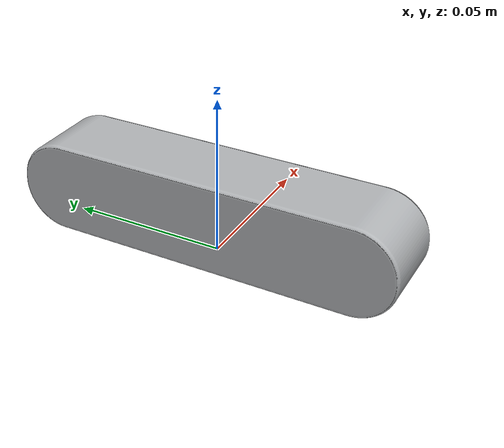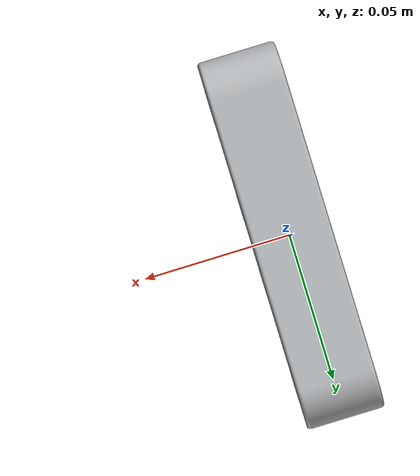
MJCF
<?xml version='1.0' encoding='utf-8'?>
<mujoco model="insta360_realsense_d455">
  <!--Independent approximate geometry; fixed sites are geometric references, not calibrated optical frames.-->
  <compiler angle="radian" inertiafromgeom="false" strippath="false" />
  <option timestep="0.002" gravity="0 0 -9.81" />
  <asset>
    <mesh name="realsense_d455_visual_mesh_0" file="../assets/meshes/visual/aluminum.obj" scale="1 1 1" inertia="shell" />
    <mesh name="realsense_d455_visual_mesh_1" file="../assets/meshes/visual/contact_gold.obj" scale="1 1 1" inertia="shell" />
    <mesh name="realsense_d455_visual_mesh_2" file="../assets/meshes/visual/glass_coating.obj" scale="1 1 1" inertia="shell" />
    <mesh name="realsense_d455_visual_mesh_3" file="../assets/meshes/visual/lens_ring.obj" scale="1 1 1" inertia="shell" />
    <mesh name="realsense_d455_visual_mesh_4" file="../assets/meshes/visual/markings.obj" scale="1 1 1" inertia="shell" />
    <mesh name="realsense_d455_visual_mesh_5" file="../assets/meshes/visual/optical_glass.obj" scale="1 1 1" inertia="shell" />
    <mesh name="realsense_d455_visual_mesh_6" file="../assets/meshes/visual/rubber.obj" scale="1 1 1" inertia="shell" />
    <mesh name="realsense_d455_visual_mesh_7" file="../assets/meshes/visual/screw_metal.obj" scale="1 1 1" inertia="shell" />
    <mesh name="realsense_d455_visual_mesh_8" file="../assets/meshes/visual/seam.obj" scale="1 1 1" inertia="shell" />
    <mesh name="realsense_d455_collision_mesh_0" file="../assets/meshes/collision/body.stl" scale="1 1 1" inertia="convex" />
  </asset>
  <worldbody>
    <body name="realsense_d455_link">
      <inertial pos="0 0 0.0145" mass="0.116" diaginertia="0.000156764333333 1.46643333333e-05 0.000155169333333" quat="1 0 0 0" />
      <geom name="realsense_d455_visual_0" type="mesh" mesh="realsense_d455_visual_mesh_0" pos="0 0 0" quat="1 0 0 0" density="0" group="2" contype="0" conaffinity="0" rgba="0.69 0.7 0.71 1" />
      <geom name="realsense_d455_visual_1" type="mesh" mesh="realsense_d455_visual_mesh_1" pos="0 0 0" quat="1 0 0 0" density="0" group="2" contype="0" conaffinity="0" rgba="0.64 0.48 0.2 1" />
      <geom name="realsense_d455_visual_2" type="mesh" mesh="realsense_d455_visual_mesh_2" pos="0 0 0" quat="1 0 0 0" density="0" group="2" contype="0" conaffinity="0" rgba="0.075 0.09 0.125 1" />
      <geom name="realsense_d455_visual_3" type="mesh" mesh="realsense_d455_visual_mesh_3" pos="0 0 0" quat="1 0 0 0" density="0" group="2" contype="0" conaffinity="0" rgba="0.14 0.15 0.17 1" />
      <geom name="realsense_d455_visual_4" type="mesh" mesh="realsense_d455_visual_mesh_4" pos="0 0 0" quat="1 0 0 0" density="0" group="2" contype="0" conaffinity="0" rgba="0.74 0.75 0.76 1" />
      <geom name="realsense_d455_visual_5" type="mesh" mesh="realsense_d455_visual_mesh_5" pos="0 0 0" quat="1 0 0 0" density="0" group="2" contype="0" conaffinity="0" rgba="0.021 0.035 0.044 1" />
      <geom name="realsense_d455_visual_6" type="mesh" mesh="realsense_d455_visual_mesh_6" pos="0 0 0" quat="1 0 0 0" density="0" group="2" contype="0" conaffinity="0" rgba="0.027 0.029 0.032 1" />
      <geom name="realsense_d455_visual_7" type="mesh" mesh="realsense_d455_visual_mesh_7" pos="0 0 0" quat="1 0 0 0" density="0" group="2" contype="0" conaffinity="0" rgba="0.31 0.32 0.34 1" />
      <geom name="realsense_d455_visual_8" type="mesh" mesh="realsense_d455_visual_mesh_8" pos="0 0 0" quat="1 0 0 0" density="0" group="2" contype="0" conaffinity="0" rgba="0.008 0.009 0.012 1" />
      <geom name="realsense_d455_collision_0" type="mesh" mesh="realsense_d455_collision_mesh_0" pos="0 0 0" quat="1 0 0 0" density="0" group="3" contype="1" conaffinity="1" rgba="0 0 0 0" />
      <site name="realsense_d455_mount" pos="0 0 0" quat="1 0 0 0" type="sphere" size="0.001" group="4" rgba="0 0 0 0" />
      <site name="realsense_d455_left_lens_surface" pos="0.013 -0.0475 0.0145" quat="0.500000000002 -0.5 0.499999999998 -0.5" type="sphere" size="0.001" group="4" rgba="0 0 0 0" />
      <site name="realsense_d455_projector_lens_surface" pos="0.013 -0.012 0.0145" quat="0.500000000002 -0.5 0.499999999998 -0.5" type="sphere" size="0.001" group="4" rgba="0 0 0 0" />
      <site name="realsense_d455_rgb_lens_surface" pos="0.013 0.009 0.0145" quat="0.500000000002 -0.5 0.499999999998 -0.5" type="sphere" size="0.001" group="4" rgba="0 0 0 0" />
      <site name="realsense_d455_right_lens_surface" pos="0.013 0.0475 0.0145" quat="0.500000000002 -0.5 0.499999999998 -0.5" type="sphere" size="0.001" group="4" rgba="0 0 0 0" />
    </body>
  </worldbody>
</mujoco>
